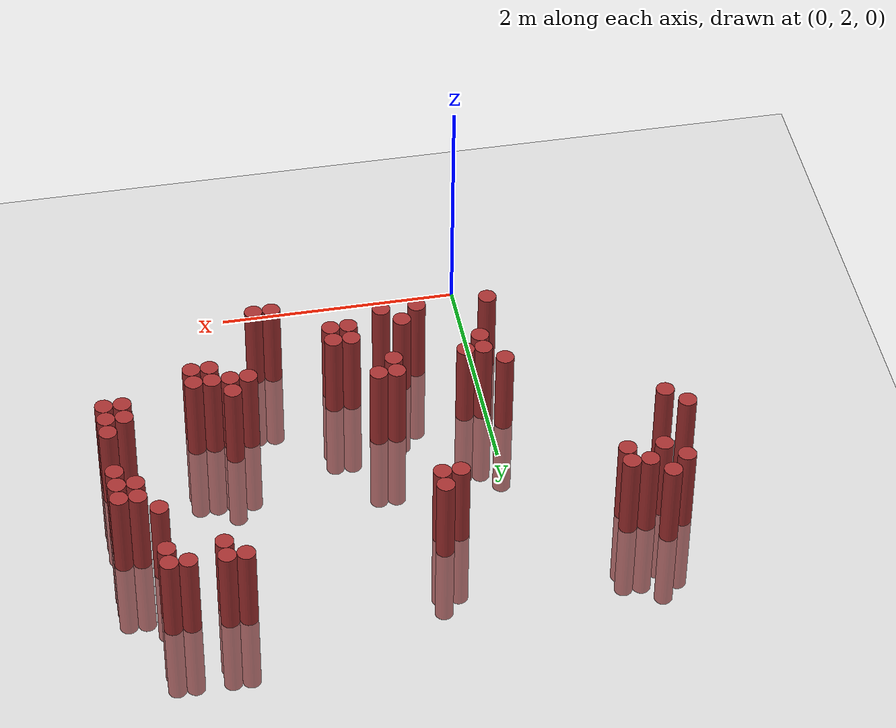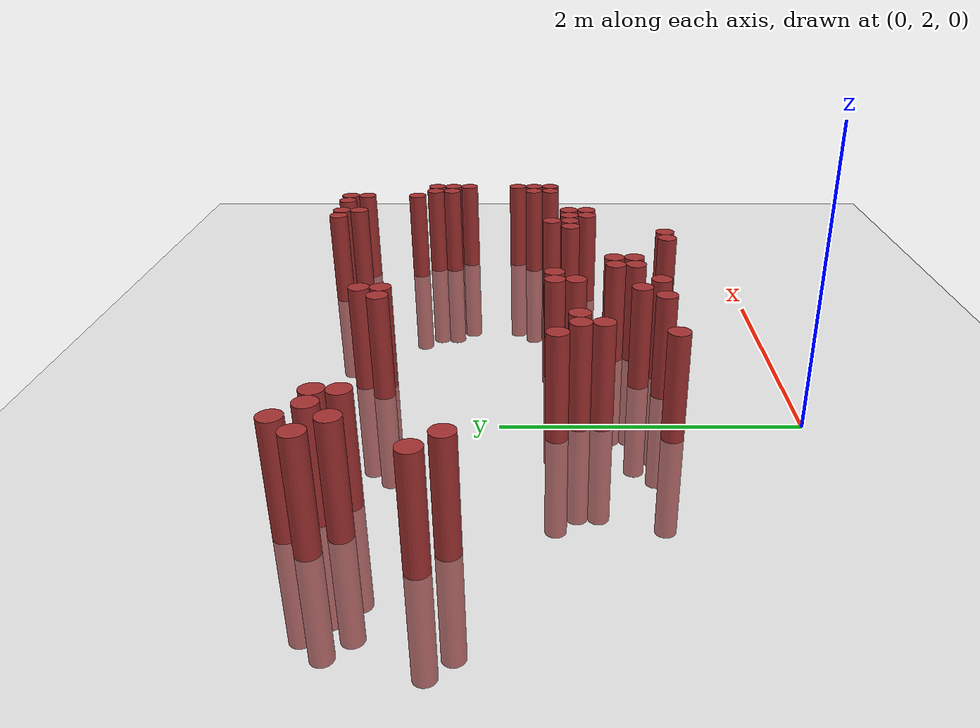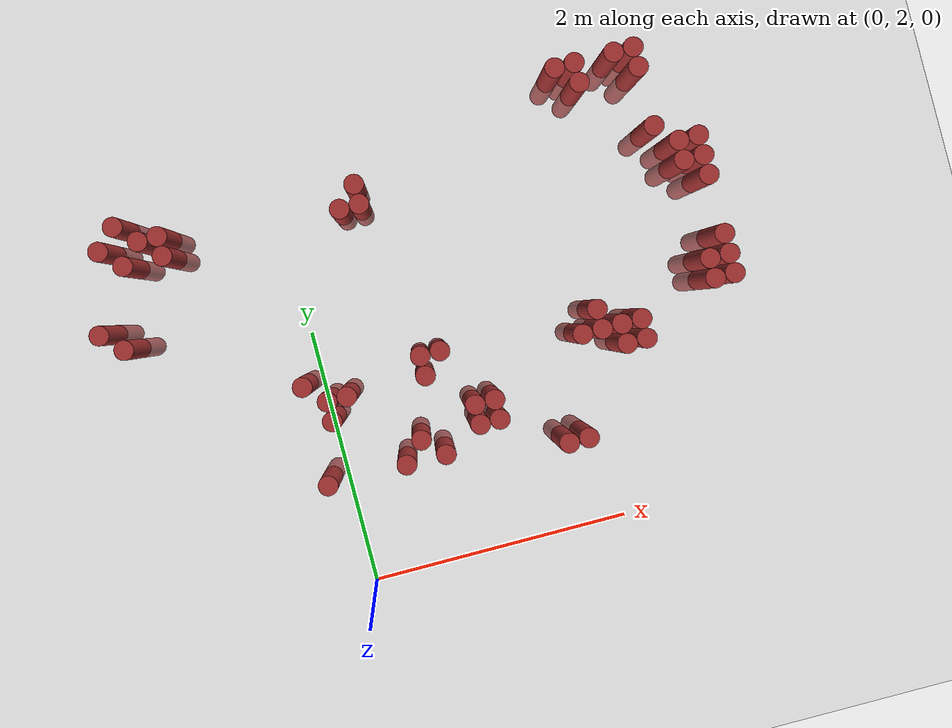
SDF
<sdf version="1.6">
 <world name="default">
  <model name="ground_plane">
   <static>1</static>
   <link name="link">
    <collision name="collision">
     <geometry><plane><normal>0 0 1</normal><size>100 100</size></plane></geometry>
     <surface><friction><ode><mu>100</mu><mu2>50</mu2></ode></friction></surface>
    </collision>
    <visual name="visual">
     <cast_shadows>0</cast_shadows>
     <geometry><plane><normal>0 0 1</normal><size>100 100</size></plane></geometry>
     <material>
      <script><uri>file://media/materials/scripts/gazebo.material</uri><name>Gazebo/Grey</name></script>
     </material>
    </visual>
   </link>
  </model>
  <model name="unit_cylinder_345">
   <static>1</static>
   <pose>-1.475000 4.375000 0.000000 0.000000 0.000000 0.000000</pose>
   <link name="link">
    <inertial>
     <mass>1</mass>
     <inertia><ixx>0.145833</ixx><ixy>0</ixy><ixz>0</ixz><iyy>0.145833</iyy><iyz>0</iyz><izz>0.125</izz></inertia>
    </inertial>
    <collision name="collision">
     <geometry><cylinder><radius>0.075000</radius><length>1.5</length></cylinder></geometry>
    </collision>
    <visual name="visual">
     <geometry><cylinder><radius>0.075000</radius><length>1.5</length></cylinder></geometry>
     <material>
      <ambient>0.648000 0.192000 0.192000 1</ambient>
      <diffuse>0.648000 0.192000 0.192000 1</diffuse>
     </material>
     <material>
      <script><name>Gazebo/Grey</name><uri>file://media/materials/scripts/gazebo.material</uri></script>
     </material>
    </visual>
   </link>
  </model>
  <model name="unit_cylinder_348">
   <static>1</static>
   <pose>-1.325000 4.225000 0.000000 0.000000 0.000000 0.000000</pose>
   <link name="link">
    <inertial>
     <mass>1</mass>
     <inertia><ixx>0.145833</ixx><ixy>0</ixy><ixz>0</ixz><iyy>0.145833</iyy><iyz>0</iyz><izz>0.125</izz></inertia>
    </inertial>
    <collision name="collision">
     <geometry><cylinder><radius>0.075000</radius><length>1.5</length></cylinder></geometry>
    </collision>
    <visual name="visual">
     <geometry><cylinder><radius>0.075000</radius><length>1.5</length></cylinder></geometry>
     <material>
      <ambient>0.648000 0.192000 0.192000 1</ambient>
      <diffuse>0.648000 0.192000 0.192000 1</diffuse>
     </material>
     <material>
      <script><name>Gazebo/Grey</name><uri>file://media/materials/scripts/gazebo.material</uri></script>
     </material>
    </visual>
   </link>
  </model>
  <model name="unit_cylinder_349">
   <static>1</static>
   <pose>-1.325000 4.975000 0.000000 0.000000 0.000000 0.000000</pose>
   <link name="link">
    <inertial>
     <mass>1</mass>
     <inertia><ixx>0.145833</ixx><ixy>0</ixy><ixz>0</ixz><iyy>0.145833</iyy><iyz>0</iyz><izz>0.125</izz></inertia>
    </inertial>
    <collision name="collision">
     <geometry><cylinder><radius>0.075000</radius><length>1.5</length></cylinder></geometry>
    </collision>
    <visual name="visual">
     <geometry><cylinder><radius>0.075000</radius><length>1.5</length></cylinder></geometry>
     <material>
      <ambient>0.648000 0.192000 0.192000 1</ambient>
      <diffuse>0.648000 0.192000 0.192000 1</diffuse>
     </material>
     <material>
      <script><name>Gazebo/Grey</name><uri>file://media/materials/scripts/gazebo.material</uri></script>
     </material>
    </visual>
   </link>
  </model>
  <model name="unit_cylinder_350">
   <static>1</static>
   <pose>-1.175000 4.825000 0.000000 0.000000 0.000000 0.000000</pose>
   <link name="link">
    <inertial>
     <mass>1</mass>
     <inertia><ixx>0.145833</ixx><ixy>0</ixy><ixz>0</ixz><iyy>0.145833</iyy><iyz>0</iyz><izz>0.125</izz></inertia>
    </inertial>
    <collision name="collision">
     <geometry><cylinder><radius>0.075000</radius><length>1.5</length></cylinder></geometry>
    </collision>
    <visual name="visual">
     <geometry><cylinder><radius>0.075000</radius><length>1.5</length></cylinder></geometry>
     <material>
      <ambient>0.648000 0.192000 0.192000 1</ambient>
      <diffuse>0.648000 0.192000 0.192000 1</diffuse>
     </material>
     <material>
      <script><name>Gazebo/Grey</name><uri>file://media/materials/scripts/gazebo.material</uri></script>
     </material>
    </visual>
   </link>
  </model>
  <model name="unit_cylinder_351">
   <static>1</static>
   <pose>-1.175000 5.125000 0.000000 0.000000 0.000000 0.000000</pose>
   <link name="link">
    <inertial>
     <mass>1</mass>
     <inertia><ixx>0.145833</ixx><ixy>0</ixy><ixz>0</ixz><iyy>0.145833</iyy><iyz>0</iyz><izz>0.125</izz></inertia>
    </inertial>
    <collision name="collision">
     <geometry><cylinder><radius>0.075000</radius><length>1.5</length></cylinder></geometry>
    </collision>
    <visual name="visual">
     <geometry><cylinder><radius>0.075000</radius><length>1.5</length></cylinder></geometry>
     <material>
      <ambient>0.648000 0.192000 0.192000 1</ambient>
      <diffuse>0.648000 0.192000 0.192000 1</diffuse>
     </material>
     <material>
      <script><name>Gazebo/Grey</name><uri>file://media/materials/scripts/gazebo.material</uri></script>
     </material>
    </visual>
   </link>
  </model>
  <model name="unit_cylinder_354">
   <static>1</static>
   <pose>-1.025000 4.975000 0.000000 0.000000 0.000000 0.000000</pose>
   <link name="link">
    <inertial>
     <mass>1</mass>
     <inertia><ixx>0.145833</ixx><ixy>0</ixy><ixz>0</ixz><iyy>0.145833</iyy><iyz>0</iyz><izz>0.125</izz></inertia>
    </inertial>
    <collision name="collision">
     <geometry><cylinder><radius>0.075000</radius><length>1.5</length></cylinder></geometry>
    </collision>
    <visual name="visual">
     <geometry><cylinder><radius>0.075000</radius><length>1.5</length></cylinder></geometry>
     <material>
      <ambient>0.648000 0.192000 0.192000 1</ambient>
      <diffuse>0.648000 0.192000 0.192000 1</diffuse>
     </material>
     <material>
      <script><name>Gazebo/Grey</name><uri>file://media/materials/scripts/gazebo.material</uri></script>
     </material>
    </visual>
   </link>
  </model>
  <model name="unit_cylinder_359">
   <static>1</static>
   <pose>-0.875000 4.825000 0.000000 0.000000 0.000000 0.000000</pose>
   <link name="link">
    <inertial>
     <mass>1</mass>
     <inertia><ixx>0.145833</ixx><ixy>0</ixy><ixz>0</ixz><iyy>0.145833</iyy><iyz>0</iyz><izz>0.125</izz></inertia>
    </inertial>
    <collision name="collision">
     <geometry><cylinder><radius>0.075000</radius><length>1.5</length></cylinder></geometry>
    </collision>
    <visual name="visual">
     <geometry><cylinder><radius>0.075000</radius><length>1.5</length></cylinder></geometry>
     <material>
      <ambient>0.648000 0.192000 0.192000 1</ambient>
      <diffuse>0.648000 0.192000 0.192000 1</diffuse>
     </material>
     <material>
      <script><name>Gazebo/Grey</name><uri>file://media/materials/scripts/gazebo.material</uri></script>
     </material>
    </visual>
   </link>
  </model>
  <model name="unit_cylinder_360">
   <static>1</static>
   <pose>-0.875000 4.975000 0.000000 0.000000 0.000000 0.000000</pose>
   <link name="link">
    <inertial>
     <mass>1</mass>
     <inertia><ixx>0.145833</ixx><ixy>0</ixy><ixz>0</ixz><iyy>0.145833</iyy><iyz>0</iyz><izz>0.125</izz></inertia>
    </inertial>
    <collision name="collision">
     <geometry><cylinder><radius>0.075000</radius><length>1.5</length></cylinder></geometry>
    </collision>
    <visual name="visual">
     <geometry><cylinder><radius>0.075000</radius><length>1.5</length></cylinder></geometry>
     <material>
      <ambient>0.648000 0.192000 0.192000 1</ambient>
      <diffuse>0.648000 0.192000 0.192000 1</diffuse>
     </material>
     <material>
      <script><name>Gazebo/Grey</name><uri>file://media/materials/scripts/gazebo.material</uri></script>
     </material>
    </visual>
   </link>
  </model>
  <model name="unit_cylinder_371">
   <static>1</static>
   <pose>-0.125000 2.875000 0.000000 0.000000 0.000000 0.000000</pose>
   <link name="link">
    <inertial>
     <mass>1</mass>
     <inertia><ixx>0.145833</ixx><ixy>0</ixy><ixz>0</ixz><iyy>0.145833</iyy><iyz>0</iyz><izz>0.125</izz></inertia>
    </inertial>
    <collision name="collision">
     <geometry><cylinder><radius>0.075000</radius><length>1.5</length></cylinder></geometry>
    </collision>
    <visual name="visual">
     <geometry><cylinder><radius>0.075000</radius><length>1.5</length></cylinder></geometry>
     <material>
      <ambient>0.648000 0.192000 0.192000 1</ambient>
      <diffuse>0.648000 0.192000 0.192000 1</diffuse>
     </material>
     <material>
      <script><name>Gazebo/Grey</name><uri>file://media/materials/scripts/gazebo.material</uri></script>
     </material>
    </visual>
   </link>
  </model>
  <model name="unit_cylinder_372">
   <static>1</static>
   <pose>-0.125000 3.625000 0.000000 0.000000 0.000000 0.000000</pose>
   <link name="link">
    <inertial>
     <mass>1</mass>
     <inertia><ixx>0.145833</ixx><ixy>0</ixy><ixz>0</ixz><iyy>0.145833</iyy><iyz>0</iyz><izz>0.125</izz></inertia>
    </inertial>
    <collision name="collision">
     <geometry><cylinder><radius>0.075000</radius><length>1.5</length></cylinder></geometry>
    </collision>
    <visual name="visual">
     <geometry><cylinder><radius>0.075000</radius><length>1.5</length></cylinder></geometry>
     <material>
      <ambient>0.648000 0.192000 0.192000 1</ambient>
      <diffuse>0.648000 0.192000 0.192000 1</diffuse>
     </material>
     <material>
      <script><name>Gazebo/Grey</name><uri>file://media/materials/scripts/gazebo.material</uri></script>
     </material>
    </visual>
   </link>
  </model>
  <model name="unit_cylinder_373">
   <static>1</static>
   <pose>0.025000 3.325000 0.000000 0.000000 0.000000 0.000000</pose>
   <link name="link">
    <inertial>
     <mass>1</mass>
     <inertia><ixx>0.145833</ixx><ixy>0</ixy><ixz>0</ixz><iyy>0.145833</iyy><iyz>0</iyz><izz>0.125</izz></inertia>
    </inertial>
    <collision name="collision">
     <geometry><cylinder><radius>0.075000</radius><length>1.5</length></cylinder></geometry>
    </collision>
    <visual name="visual">
     <geometry><cylinder><radius>0.075000</radius><length>1.5</length></cylinder></geometry>
     <material>
      <ambient>0.648000 0.192000 0.192000 1</ambient>
      <diffuse>0.648000 0.192000 0.192000 1</diffuse>
     </material>
     <material>
      <script><name>Gazebo/Grey</name><uri>file://media/materials/scripts/gazebo.material</uri></script>
     </material>
    </visual>
   </link>
  </model>
  <model name="unit_cylinder_374">
   <static>1</static>
   <pose>0.025000 3.475000 0.000000 0.000000 0.000000 0.000000</pose>
   <link name="link">
    <inertial>
     <mass>1</mass>
     <inertia><ixx>0.145833</ixx><ixy>0</ixy><ixz>0</ixz><iyy>0.145833</iyy><iyz>0</iyz><izz>0.125</izz></inertia>
    </inertial>
    <collision name="collision">
     <geometry><cylinder><radius>0.075000</radius><length>1.5</length></cylinder></geometry>
    </collision>
    <visual name="visual">
     <geometry><cylinder><radius>0.075000</radius><length>1.5</length></cylinder></geometry>
     <material>
      <ambient>0.648000 0.192000 0.192000 1</ambient>
      <diffuse>0.648000 0.192000 0.192000 1</diffuse>
     </material>
     <material>
      <script><name>Gazebo/Grey</name><uri>file://media/materials/scripts/gazebo.material</uri></script>
     </material>
    </visual>
   </link>
  </model>
  <model name="unit_cylinder_375">
   <static>1</static>
   <pose>0.175000 3.475000 0.000000 0.000000 0.000000 0.000000</pose>
   <link name="link">
    <inertial>
     <mass>1</mass>
     <inertia><ixx>0.145833</ixx><ixy>0</ixy><ixz>0</ixz><iyy>0.145833</iyy><iyz>0</iyz><izz>0.125</izz></inertia>
    </inertial>
    <collision name="collision">
     <geometry><cylinder><radius>0.075000</radius><length>1.5</length></cylinder></geometry>
    </collision>
    <visual name="visual">
     <geometry><cylinder><radius>0.075000</radius><length>1.5</length></cylinder></geometry>
     <material>
      <ambient>0.648000 0.192000 0.192000 1</ambient>
      <diffuse>0.648000 0.192000 0.192000 1</diffuse>
     </material>
     <material>
      <script><name>Gazebo/Grey</name><uri>file://media/materials/scripts/gazebo.material</uri></script>
     </material>
    </visual>
   </link>
  </model>
  <model name="unit_cylinder_379">
   <static>1</static>
   <pose>0.475000 2.875000 0.000000 0.000000 0.000000 0.000000</pose>
   <link name="link">
    <inertial>
     <mass>1</mass>
     <inertia><ixx>0.145833</ixx><ixy>0</ixy><ixz>0</ixz><iyy>0.145833</iyy><iyz>0</iyz><izz>0.125</izz></inertia>
    </inertial>
    <collision name="collision">
     <geometry><cylinder><radius>0.075000</radius><length>1.5</length></cylinder></geometry>
    </collision>
    <visual name="visual">
     <geometry><cylinder><radius>0.075000</radius><length>1.5</length></cylinder></geometry>
     <material>
      <ambient>0.648000 0.192000 0.192000 1</ambient>
      <diffuse>0.648000 0.192000 0.192000 1</diffuse>
     </material>
     <material>
      <script><name>Gazebo/Grey</name><uri>file://media/materials/scripts/gazebo.material</uri></script>
     </material>
    </visual>
   </link>
  </model>
  <model name="unit_cylinder_380">
   <static>1</static>
   <pose>0.475000 4.825000 0.000000 0.000000 0.000000 0.000000</pose>
   <link name="link">
    <inertial>
     <mass>1</mass>
     <inertia><ixx>0.145833</ixx><ixy>0</ixy><ixz>0</ixz><iyy>0.145833</iyy><iyz>0</iyz><izz>0.125</izz></inertia>
    </inertial>
    <collision name="collision">
     <geometry><cylinder><radius>0.075000</radius><length>1.5</length></cylinder></geometry>
    </collision>
    <visual name="visual">
     <geometry><cylinder><radius>0.075000</radius><length>1.5</length></cylinder></geometry>
     <material>
      <ambient>0.648000 0.192000 0.192000 1</ambient>
      <diffuse>0.648000 0.192000 0.192000 1</diffuse>
     </material>
     <material>
      <script><name>Gazebo/Grey</name><uri>file://media/materials/scripts/gazebo.material</uri></script>
     </material>
    </visual>
   </link>
  </model>
  <model name="unit_cylinder_381">
   <static>1</static>
   <pose>0.625000 3.025000 0.000000 0.000000 0.000000 0.000000</pose>
   <link name="link">
    <inertial>
     <mass>1</mass>
     <inertia><ixx>0.145833</ixx><ixy>0</ixy><ixz>0</ixz><iyy>0.145833</iyy><iyz>0</iyz><izz>0.125</izz></inertia>
    </inertial>
    <collision name="collision">
     <geometry><cylinder><radius>0.075000</radius><length>1.5</length></cylinder></geometry>
    </collision>
    <visual name="visual">
     <geometry><cylinder><radius>0.075000</radius><length>1.5</length></cylinder></geometry>
     <material>
      <ambient>0.648000 0.192000 0.192000 1</ambient>
      <diffuse>0.648000 0.192000 0.192000 1</diffuse>
     </material>
     <material>
      <script><name>Gazebo/Grey</name><uri>file://media/materials/scripts/gazebo.material</uri></script>
     </material>
    </visual>
   </link>
  </model>
  <model name="unit_cylinder_382">
   <static>1</static>
   <pose>0.625000 4.825000 0.000000 0.000000 0.000000 0.000000</pose>
   <link name="link">
    <inertial>
     <mass>1</mass>
     <inertia><ixx>0.145833</ixx><ixy>0</ixy><ixz>0</ixz><iyy>0.145833</iyy><iyz>0</iyz><izz>0.125</izz></inertia>
    </inertial>
    <collision name="collision">
     <geometry><cylinder><radius>0.075000</radius><length>1.5</length></cylinder></geometry>
    </collision>
    <visual name="visual">
     <geometry><cylinder><radius>0.075000</radius><length>1.5</length></cylinder></geometry>
     <material>
      <ambient>0.648000 0.192000 0.192000 1</ambient>
      <diffuse>0.648000 0.192000 0.192000 1</diffuse>
     </material>
     <material>
      <script><name>Gazebo/Grey</name><uri>file://media/materials/scripts/gazebo.material</uri></script>
     </material>
    </visual>
   </link>
  </model>
  <model name="unit_cylinder_383">
   <static>1</static>
   <pose>0.625000 4.975000 0.000000 0.000000 0.000000 0.000000</pose>
   <link name="link">
    <inertial>
     <mass>1</mass>
     <inertia><ixx>0.145833</ixx><ixy>0</ixy><ixz>0</ixz><iyy>0.145833</iyy><iyz>0</iyz><izz>0.125</izz></inertia>
    </inertial>
    <collision name="collision">
     <geometry><cylinder><radius>0.075000</radius><length>1.5</length></cylinder></geometry>
    </collision>
    <visual name="visual">
     <geometry><cylinder><radius>0.075000</radius><length>1.5</length></cylinder></geometry>
     <material>
      <ambient>0.648000 0.192000 0.192000 1</ambient>
      <diffuse>0.648000 0.192000 0.192000 1</diffuse>
     </material>
     <material>
      <script><name>Gazebo/Grey</name><uri>file://media/materials/scripts/gazebo.material</uri></script>
     </material>
    </visual>
   </link>
  </model>
  <model name="unit_cylinder_384">
   <static>1</static>
   <pose>0.775000 2.875000 0.000000 0.000000 0.000000 0.000000</pose>
   <link name="link">
    <inertial>
     <mass>1</mass>
     <inertia><ixx>0.145833</ixx><ixy>0</ixy><ixz>0</ixz><iyy>0.145833</iyy><iyz>0</iyz><izz>0.125</izz></inertia>
    </inertial>
    <collision name="collision">
     <geometry><cylinder><radius>0.075000</radius><length>1.5</length></cylinder></geometry>
    </collision>
    <visual name="visual">
     <geometry><cylinder><radius>0.075000</radius><length>1.5</length></cylinder></geometry>
     <material>
      <ambient>0.648000 0.192000 0.192000 1</ambient>
      <diffuse>0.648000 0.192000 0.192000 1</diffuse>
     </material>
     <material>
      <script><name>Gazebo/Grey</name><uri>file://media/materials/scripts/gazebo.material</uri></script>
     </material>
    </visual>
   </link>
  </model>
  <model name="unit_cylinder_385">
   <static>1</static>
   <pose>0.775000 3.475000 0.000000 0.000000 0.000000 0.000000</pose>
   <link name="link">
    <inertial>
     <mass>1</mass>
     <inertia><ixx>0.145833</ixx><ixy>0</ixy><ixz>0</ixz><iyy>0.145833</iyy><iyz>0</iyz><izz>0.125</izz></inertia>
    </inertial>
    <collision name="collision">
     <geometry><cylinder><radius>0.075000</radius><length>1.5</length></cylinder></geometry>
    </collision>
    <visual name="visual">
     <geometry><cylinder><radius>0.075000</radius><length>1.5</length></cylinder></geometry>
     <material>
      <ambient>0.648000 0.192000 0.192000 1</ambient>
      <diffuse>0.648000 0.192000 0.192000 1</diffuse>
     </material>
     <material>
      <script><name>Gazebo/Grey</name><uri>file://media/materials/scripts/gazebo.material</uri></script>
     </material>
    </visual>
   </link>
  </model>
  <model name="unit_cylinder_386">
   <static>1</static>
   <pose>0.775000 3.625000 0.000000 0.000000 0.000000 0.000000</pose>
   <link name="link">
    <inertial>
     <mass>1</mass>
     <inertia><ixx>0.145833</ixx><ixy>0</ixy><ixz>0</ixz><iyy>0.145833</iyy><iyz>0</iyz><izz>0.125</izz></inertia>
    </inertial>
    <collision name="collision">
     <geometry><cylinder><radius>0.075000</radius><length>1.5</length></cylinder></geometry>
    </collision>
    <visual name="visual">
     <geometry><cylinder><radius>0.075000</radius><length>1.5</length></cylinder></geometry>
     <material>
      <ambient>0.648000 0.192000 0.192000 1</ambient>
      <diffuse>0.648000 0.192000 0.192000 1</diffuse>
     </material>
     <material>
      <script><name>Gazebo/Grey</name><uri>file://media/materials/scripts/gazebo.material</uri></script>
     </material>
    </visual>
   </link>
  </model>
  <model name="unit_cylinder_387">
   <static>1</static>
   <pose>0.925000 3.625000 0.000000 0.000000 0.000000 0.000000</pose>
   <link name="link">
    <inertial>
     <mass>1</mass>
     <inertia><ixx>0.145833</ixx><ixy>0</ixy><ixz>0</ixz><iyy>0.145833</iyy><iyz>0</iyz><izz>0.125</izz></inertia>
    </inertial>
    <collision name="collision">
     <geometry><cylinder><radius>0.075000</radius><length>1.5</length></cylinder></geometry>
    </collision>
    <visual name="visual">
     <geometry><cylinder><radius>0.075000</radius><length>1.5</length></cylinder></geometry>
     <material>
      <ambient>0.648000 0.192000 0.192000 1</ambient>
      <diffuse>0.648000 0.192000 0.192000 1</diffuse>
     </material>
     <material>
      <script><name>Gazebo/Grey</name><uri>file://media/materials/scripts/gazebo.material</uri></script>
     </material>
    </visual>
   </link>
  </model>
  <model name="unit_cylinder_388">
   <static>1</static>
   <pose>1.075000 3.025000 0.000000 0.000000 0.000000 0.000000</pose>
   <link name="link">
    <inertial>
     <mass>1</mass>
     <inertia><ixx>0.145833</ixx><ixy>0</ixy><ixz>0</ixz><iyy>0.145833</iyy><iyz>0</iyz><izz>0.125</izz></inertia>
    </inertial>
    <collision name="collision">
     <geometry><cylinder><radius>0.075000</radius><length>1.5</length></cylinder></geometry>
    </collision>
    <visual name="visual">
     <geometry><cylinder><radius>0.075000</radius><length>1.5</length></cylinder></geometry>
     <material>
      <ambient>0.648000 0.192000 0.192000 1</ambient>
      <diffuse>0.648000 0.192000 0.192000 1</diffuse>
     </material>
     <material>
      <script><name>Gazebo/Grey</name><uri>file://media/materials/scripts/gazebo.material</uri></script>
     </material>
    </visual>
   </link>
  </model>
  <model name="unit_cylinder_389">
   <static>1</static>
   <pose>1.075000 3.175000 0.000000 0.000000 0.000000 0.000000</pose>
   <link name="link">
    <inertial>
     <mass>1</mass>
     <inertia><ixx>0.145833</ixx><ixy>0</ixy><ixz>0</ixz><iyy>0.145833</iyy><iyz>0</iyz><izz>0.125</izz></inertia>
    </inertial>
    <collision name="collision">
     <geometry><cylinder><radius>0.075000</radius><length>1.5</length></cylinder></geometry>
    </collision>
    <visual name="visual">
     <geometry><cylinder><radius>0.075000</radius><length>1.5</length></cylinder></geometry>
     <material>
      <ambient>0.648000 0.192000 0.192000 1</ambient>
      <diffuse>0.648000 0.192000 0.192000 1</diffuse>
     </material>
     <material>
      <script><name>Gazebo/Grey</name><uri>file://media/materials/scripts/gazebo.material</uri></script>
     </material>
    </visual>
   </link>
  </model>
  <model name="unit_cylinder_390">
   <static>1</static>
   <pose>1.225000 3.025000 0.000000 0.000000 0.000000 0.000000</pose>
   <link name="link">
    <inertial>
     <mass>1</mass>
     <inertia><ixx>0.145833</ixx><ixy>0</ixy><ixz>0</ixz><iyy>0.145833</iyy><iyz>0</iyz><izz>0.125</izz></inertia>
    </inertial>
    <collision name="collision">
     <geometry><cylinder><radius>0.075000</radius><length>1.5</length></cylinder></geometry>
    </collision>
    <visual name="visual">
     <geometry><cylinder><radius>0.075000</radius><length>1.5</length></cylinder></geometry>
     <material>
      <ambient>0.648000 0.192000 0.192000 1</ambient>
      <diffuse>0.648000 0.192000 0.192000 1</diffuse>
     </material>
     <material>
      <script><name>Gazebo/Grey</name><uri>file://media/materials/scripts/gazebo.material</uri></script>
     </material>
    </visual>
   </link>
  </model>
  <model name="unit_cylinder_391">
   <static>1</static>
   <pose>1.225000 3.175000 0.000000 0.000000 0.000000 0.000000</pose>
   <link name="link">
    <inertial>
     <mass>1</mass>
     <inertia><ixx>0.145833</ixx><ixy>0</ixy><ixz>0</ixz><iyy>0.145833</iyy><iyz>0</iyz><izz>0.125</izz></inertia>
    </inertial>
    <collision name="collision">
     <geometry><cylinder><radius>0.075000</radius><length>1.5</length></cylinder></geometry>
    </collision>
    <visual name="visual">
     <geometry><cylinder><radius>0.075000</radius><length>1.5</length></cylinder></geometry>
     <material>
      <ambient>0.648000 0.192000 0.192000 1</ambient>
      <diffuse>0.648000 0.192000 0.192000 1</diffuse>
     </material>
     <material>
      <script><name>Gazebo/Grey</name><uri>file://media/materials/scripts/gazebo.material</uri></script>
     </material>
    </visual>
   </link>
  </model>
  <model name="unit_cylinder_393">
   <static>1</static>
   <pose>1.675000 2.725000 0.000000 0.000000 0.000000 0.000000</pose>
   <link name="link">
    <inertial>
     <mass>1</mass>
     <inertia><ixx>0.145833</ixx><ixy>0</ixy><ixz>0</ixz><iyy>0.145833</iyy><iyz>0</iyz><izz>0.125</izz></inertia>
    </inertial>
    <collision name="collision">
     <geometry><cylinder><radius>0.075000</radius><length>1.5</length></cylinder></geometry>
    </collision>
    <visual name="visual">
     <geometry><cylinder><radius>0.075000</radius><length>1.5</length></cylinder></geometry>
     <material>
      <ambient>0.648000 0.192000 0.192000 1</ambient>
      <diffuse>0.648000 0.192000 0.192000 1</diffuse>
     </material>
     <material>
      <script><name>Gazebo/Grey</name><uri>file://media/materials/scripts/gazebo.material</uri></script>
     </material>
    </visual>
   </link>
  </model>
  <model name="unit_cylinder_396">
   <static>1</static>
   <pose>1.825000 2.725000 0.000000 0.000000 0.000000 0.000000</pose>
   <link name="link">
    <inertial>
     <mass>1</mass>
     <inertia><ixx>0.145833</ixx><ixy>0</ixy><ixz>0</ixz><iyy>0.145833</iyy><iyz>0</iyz><izz>0.125</izz></inertia>
    </inertial>
    <collision name="collision">
     <geometry><cylinder><radius>0.075000</radius><length>1.5</length></cylinder></geometry>
    </collision>
    <visual name="visual">
     <geometry><cylinder><radius>0.075000</radius><length>1.5</length></cylinder></geometry>
     <material>
      <ambient>0.648000 0.192000 0.192000 1</ambient>
      <diffuse>0.648000 0.192000 0.192000 1</diffuse>
     </material>
     <material>
      <script><name>Gazebo/Grey</name><uri>file://media/materials/scripts/gazebo.material</uri></script>
     </material>
    </visual>
   </link>
  </model>
  <model name="unit_cylinder_404">
   <static>1</static>
   <pose>1.975000 3.475000 0.000000 0.000000 0.000000 0.000000</pose>
   <link name="link">
    <inertial>
     <mass>1</mass>
     <inertia><ixx>0.145833</ixx><ixy>0</ixy><ixz>0</ixz><iyy>0.145833</iyy><iyz>0</iyz><izz>0.125</izz></inertia>
    </inertial>
    <collision name="collision">
     <geometry><cylinder><radius>0.075000</radius><length>1.5</length></cylinder></geometry>
    </collision>
    <visual name="visual">
     <geometry><cylinder><radius>0.075000</radius><length>1.5</length></cylinder></geometry>
     <material>
      <ambient>0.648000 0.192000 0.192000 1</ambient>
      <diffuse>0.648000 0.192000 0.192000 1</diffuse>
     </material>
     <material>
      <script><name>Gazebo/Grey</name><uri>file://media/materials/scripts/gazebo.material</uri></script>
     </material>
    </visual>
   </link>
  </model>
  <model name="unit_cylinder_407">
   <static>1</static>
   <pose>2.125000 3.475000 0.000000 0.000000 0.000000 0.000000</pose>
   <link name="link">
    <inertial>
     <mass>1</mass>
     <inertia><ixx>0.145833</ixx><ixy>0</ixy><ixz>0</ixz><iyy>0.145833</iyy><iyz>0</iyz><izz>0.125</izz></inertia>
    </inertial>
    <collision name="collision">
     <geometry><cylinder><radius>0.075000</radius><length>1.5</length></cylinder></geometry>
    </collision>
    <visual name="visual">
     <geometry><cylinder><radius>0.075000</radius><length>1.5</length></cylinder></geometry>
     <material>
      <ambient>0.648000 0.192000 0.192000 1</ambient>
      <diffuse>0.648000 0.192000 0.192000 1</diffuse>
     </material>
     <material>
      <script><name>Gazebo/Grey</name><uri>file://media/materials/scripts/gazebo.material</uri></script>
     </material>
    </visual>
   </link>
  </model>
  <model name="unit_cylinder_408">
   <static>1</static>
   <pose>2.125000 3.625000 0.000000 0.000000 0.000000 0.000000</pose>
   <link name="link">
    <inertial>
     <mass>1</mass>
     <inertia><ixx>0.145833</ixx><ixy>0</ixy><ixz>0</ixz><iyy>0.145833</iyy><iyz>0</iyz><izz>0.125</izz></inertia>
    </inertial>
    <collision name="collision">
     <geometry><cylinder><radius>0.075000</radius><length>1.5</length></cylinder></geometry>
    </collision>
    <visual name="visual">
     <geometry><cylinder><radius>0.075000</radius><length>1.5</length></cylinder></geometry>
     <material>
      <ambient>0.648000 0.192000 0.192000 1</ambient>
      <diffuse>0.648000 0.192000 0.192000 1</diffuse>
     </material>
     <material>
      <script><name>Gazebo/Grey</name><uri>file://media/materials/scripts/gazebo.material</uri></script>
     </material>
    </visual>
   </link>
  </model>
  <model name="unit_cylinder_409">
   <static>1</static>
   <pose>2.275000 3.325000 0.000000 0.000000 0.000000 0.000000</pose>
   <link name="link">
    <inertial>
     <mass>1</mass>
     <inertia><ixx>0.145833</ixx><ixy>0</ixy><ixz>0</ixz><iyy>0.145833</iyy><iyz>0</iyz><izz>0.125</izz></inertia>
    </inertial>
    <collision name="collision">
     <geometry><cylinder><radius>0.075000</radius><length>1.5</length></cylinder></geometry>
    </collision>
    <visual name="visual">
     <geometry><cylinder><radius>0.075000</radius><length>1.5</length></cylinder></geometry>
     <material>
      <ambient>0.648000 0.192000 0.192000 1</ambient>
      <diffuse>0.648000 0.192000 0.192000 1</diffuse>
     </material>
     <material>
      <script><name>Gazebo/Grey</name><uri>file://media/materials/scripts/gazebo.material</uri></script>
     </material>
    </visual>
   </link>
  </model>
  <model name="unit_cylinder_410">
   <static>1</static>
   <pose>2.275000 3.475000 0.000000 0.000000 0.000000 0.000000</pose>
   <link name="link">
    <inertial>
     <mass>1</mass>
     <inertia><ixx>0.145833</ixx><ixy>0</ixy><ixz>0</ixz><iyy>0.145833</iyy><iyz>0</iyz><izz>0.125</izz></inertia>
    </inertial>
    <collision name="collision">
     <geometry><cylinder><radius>0.075000</radius><length>1.5</length></cylinder></geometry>
    </collision>
    <visual name="visual">
     <geometry><cylinder><radius>0.075000</radius><length>1.5</length></cylinder></geometry>
     <material>
      <ambient>0.648000 0.192000 0.192000 1</ambient>
      <diffuse>0.648000 0.192000 0.192000 1</diffuse>
     </material>
     <material>
      <script><name>Gazebo/Grey</name><uri>file://media/materials/scripts/gazebo.material</uri></script>
     </material>
    </visual>
   </link>
  </model>
  <model name="unit_cylinder_411">
   <static>1</static>
   <pose>2.275000 5.425000 0.000000 0.000000 0.000000 0.000000</pose>
   <link name="link">
    <inertial>
     <mass>1</mass>
     <inertia><ixx>0.145833</ixx><ixy>0</ixy><ixz>0</ixz><iyy>0.145833</iyy><iyz>0</iyz><izz>0.125</izz></inertia>
    </inertial>
    <collision name="collision">
     <geometry><cylinder><radius>0.075000</radius><length>1.5</length></cylinder></geometry>
    </collision>
    <visual name="visual">
     <geometry><cylinder><radius>0.075000</radius><length>1.5</length></cylinder></geometry>
     <material>
      <ambient>0.648000 0.192000 0.192000 1</ambient>
      <diffuse>0.648000 0.192000 0.192000 1</diffuse>
     </material>
     <material>
      <script><name>Gazebo/Grey</name><uri>file://media/materials/scripts/gazebo.material</uri></script>
     </material>
    </visual>
   </link>
  </model>
  <model name="unit_cylinder_412">
   <static>1</static>
   <pose>2.425000 3.325000 0.000000 0.000000 0.000000 0.000000</pose>
   <link name="link">
    <inertial>
     <mass>1</mass>
     <inertia><ixx>0.145833</ixx><ixy>0</ixy><ixz>0</ixz><iyy>0.145833</iyy><iyz>0</iyz><izz>0.125</izz></inertia>
    </inertial>
    <collision name="collision">
     <geometry><cylinder><radius>0.075000</radius><length>1.5</length></cylinder></geometry>
    </collision>
    <visual name="visual">
     <geometry><cylinder><radius>0.075000</radius><length>1.5</length></cylinder></geometry>
     <material>
      <ambient>0.648000 0.192000 0.192000 1</ambient>
      <diffuse>0.648000 0.192000 0.192000 1</diffuse>
     </material>
     <material>
      <script><name>Gazebo/Grey</name><uri>file://media/materials/scripts/gazebo.material</uri></script>
     </material>
    </visual>
   </link>
  </model>
  <model name="unit_cylinder_413">
   <static>1</static>
   <pose>2.425000 3.475000 0.000000 0.000000 0.000000 0.000000</pose>
   <link name="link">
    <inertial>
     <mass>1</mass>
     <inertia><ixx>0.145833</ixx><ixy>0</ixy><ixz>0</ixz><iyy>0.145833</iyy><iyz>0</iyz><izz>0.125</izz></inertia>
    </inertial>
    <collision name="collision">
     <geometry><cylinder><radius>0.075000</radius><length>1.5</length></cylinder></geometry>
    </collision>
    <visual name="visual">
     <geometry><cylinder><radius>0.075000</radius><length>1.5</length></cylinder></geometry>
     <material>
      <ambient>0.648000 0.192000 0.192000 1</ambient>
      <diffuse>0.648000 0.192000 0.192000 1</diffuse>
     </material>
     <material>
      <script><name>Gazebo/Grey</name><uri>file://media/materials/scripts/gazebo.material</uri></script>
     </material>
    </visual>
   </link>
  </model>
  <model name="unit_cylinder_414">
   <static>1</static>
   <pose>2.425000 5.275000 0.000000 0.000000 0.000000 0.000000</pose>
   <link name="link">
    <inertial>
     <mass>1</mass>
     <inertia><ixx>0.145833</ixx><ixy>0</ixy><ixz>0</ixz><iyy>0.145833</iyy><iyz>0</iyz><izz>0.125</izz></inertia>
    </inertial>
    <collision name="collision">
     <geometry><cylinder><radius>0.075000</radius><length>1.5</length></cylinder></geometry>
    </collision>
    <visual name="visual">
     <geometry><cylinder><radius>0.075000</radius><length>1.5</length></cylinder></geometry>
     <material>
      <ambient>0.648000 0.192000 0.192000 1</ambient>
      <diffuse>0.648000 0.192000 0.192000 1</diffuse>
     </material>
     <material>
      <script><name>Gazebo/Grey</name><uri>file://media/materials/scripts/gazebo.material</uri></script>
     </material>
    </visual>
   </link>
  </model>
  <model name="unit_cylinder_415">
   <static>1</static>
   <pose>2.425000 5.425000 0.000000 0.000000 0.000000 0.000000</pose>
   <link name="link">
    <inertial>
     <mass>1</mass>
     <inertia><ixx>0.145833</ixx><ixy>0</ixy><ixz>0</ixz><iyy>0.145833</iyy><iyz>0</iyz><izz>0.125</izz></inertia>
    </inertial>
    <collision name="collision">
     <geometry><cylinder><radius>0.075000</radius><length>1.5</length></cylinder></geometry>
    </collision>
    <visual name="visual">
     <geometry><cylinder><radius>0.075000</radius><length>1.5</length></cylinder></geometry>
     <material>
      <ambient>0.648000 0.192000 0.192000 1</ambient>
      <diffuse>0.648000 0.192000 0.192000 1</diffuse>
     </material>
     <material>
      <script><name>Gazebo/Grey</name><uri>file://media/materials/scripts/gazebo.material</uri></script>
     </material>
    </visual>
   </link>
  </model>
  <model name="unit_cylinder_416">
   <static>1</static>
   <pose>2.725000 5.425000 0.000000 0.000000 0.000000 0.000000</pose>
   <link name="link">
    <inertial>
     <mass>1</mass>
     <inertia><ixx>0.145833</ixx><ixy>0</ixy><ixz>0</ixz><iyy>0.145833</iyy><iyz>0</iyz><izz>0.125</izz></inertia>
    </inertial>
    <collision name="collision">
     <geometry><cylinder><radius>0.075000</radius><length>1.5</length></cylinder></geometry>
    </collision>
    <visual name="visual">
     <geometry><cylinder><radius>0.075000</radius><length>1.5</length></cylinder></geometry>
     <material>
      <ambient>0.648000 0.192000 0.192000 1</ambient>
      <diffuse>0.648000 0.192000 0.192000 1</diffuse>
     </material>
     <material>
      <script><name>Gazebo/Grey</name><uri>file://media/materials/scripts/gazebo.material</uri></script>
     </material>
    </visual>
   </link>
  </model>
  <model name="unit_cylinder_417">
   <static>1</static>
   <pose>2.875000 4.825000 0.000000 0.000000 0.000000 0.000000</pose>
   <link name="link">
    <inertial>
     <mass>1</mass>
     <inertia><ixx>0.145833</ixx><ixy>0</ixy><ixz>0</ixz><iyy>0.145833</iyy><iyz>0</iyz><izz>0.125</izz></inertia>
    </inertial>
    <collision name="collision">
     <geometry><cylinder><radius>0.075000</radius><length>1.5</length></cylinder></geometry>
    </collision>
    <visual name="visual">
     <geometry><cylinder><radius>0.075000</radius><length>1.5</length></cylinder></geometry>
     <material>
      <ambient>0.648000 0.192000 0.192000 1</ambient>
      <diffuse>0.648000 0.192000 0.192000 1</diffuse>
     </material>
     <material>
      <script><name>Gazebo/Grey</name><uri>file://media/materials/scripts/gazebo.material</uri></script>
     </material>
    </visual>
   </link>
  </model>
  <model name="unit_cylinder_418">
   <static>1</static>
   <pose>2.875000 5.275000 0.000000 0.000000 0.000000 0.000000</pose>
   <link name="link">
    <inertial>
     <mass>1</mass>
     <inertia><ixx>0.145833</ixx><ixy>0</ixy><ixz>0</ixz><iyy>0.145833</iyy><iyz>0</iyz><izz>0.125</izz></inertia>
    </inertial>
    <collision name="collision">
     <geometry><cylinder><radius>0.075000</radius><length>1.5</length></cylinder></geometry>
    </collision>
    <visual name="visual">
     <geometry><cylinder><radius>0.075000</radius><length>1.5</length></cylinder></geometry>
     <material>
      <ambient>0.648000 0.192000 0.192000 1</ambient>
      <diffuse>0.648000 0.192000 0.192000 1</diffuse>
     </material>
     <material>
      <script><name>Gazebo/Grey</name><uri>file://media/materials/scripts/gazebo.material</uri></script>
     </material>
    </visual>
   </link>
  </model>
  <model name="unit_cylinder_419">
   <static>1</static>
   <pose>2.875000 5.425000 0.000000 0.000000 0.000000 0.000000</pose>
   <link name="link">
    <inertial>
     <mass>1</mass>
     <inertia><ixx>0.145833</ixx><ixy>0</ixy><ixz>0</ixz><iyy>0.145833</iyy><iyz>0</iyz><izz>0.125</izz></inertia>
    </inertial>
    <collision name="collision">
     <geometry><cylinder><radius>0.075000</radius><length>1.5</length></cylinder></geometry>
    </collision>
    <visual name="visual">
     <geometry><cylinder><radius>0.075000</radius><length>1.5</length></cylinder></geometry>
     <material>
      <ambient>0.648000 0.192000 0.192000 1</ambient>
      <diffuse>0.648000 0.192000 0.192000 1</diffuse>
     </material>
     <material>
      <script><name>Gazebo/Grey</name><uri>file://media/materials/scripts/gazebo.material</uri></script>
     </material>
    </visual>
   </link>
  </model>
  <model name="unit_cylinder_423">
   <static>1</static>
   <pose>3.025000 3.625000 0.000000 0.000000 0.000000 0.000000</pose>
   <link name="link">
    <inertial>
     <mass>1</mass>
     <inertia><ixx>0.145833</ixx><ixy>0</ixy><ixz>0</ixz><iyy>0.145833</iyy><iyz>0</iyz><izz>0.125</izz></inertia>
    </inertial>
    <collision name="collision">
     <geometry><cylinder><radius>0.075000</radius><length>1.5</length></cylinder></geometry>
    </collision>
    <visual name="visual">
     <geometry><cylinder><radius>0.075000</radius><length>1.5</length></cylinder></geometry>
     <material>
      <ambient>0.648000 0.192000 0.192000 1</ambient>
      <diffuse>0.648000 0.192000 0.192000 1</diffuse>
     </material>
     <material>
      <script><name>Gazebo/Grey</name><uri>file://media/materials/scripts/gazebo.material</uri></script>
     </material>
    </visual>
   </link>
  </model>
  <model name="unit_cylinder_424">
   <static>1</static>
   <pose>3.025000 3.775000 0.000000 0.000000 0.000000 0.000000</pose>
   <link name="link">
    <inertial>
     <mass>1</mass>
     <inertia><ixx>0.145833</ixx><ixy>0</ixy><ixz>0</ixz><iyy>0.145833</iyy><iyz>0</iyz><izz>0.125</izz></inertia>
    </inertial>
    <collision name="collision">
     <geometry><cylinder><radius>0.075000</radius><length>1.5</length></cylinder></geometry>
    </collision>
    <visual name="visual">
     <geometry><cylinder><radius>0.075000</radius><length>1.5</length></cylinder></geometry>
     <material>
      <ambient>0.648000 0.192000 0.192000 1</ambient>
      <diffuse>0.648000 0.192000 0.192000 1</diffuse>
     </material>
     <material>
      <script><name>Gazebo/Grey</name><uri>file://media/materials/scripts/gazebo.material</uri></script>
     </material>
    </visual>
   </link>
  </model>
  <model name="unit_cylinder_425">
   <static>1</static>
   <pose>3.025000 4.525000 0.000000 0.000000 0.000000 0.000000</pose>
   <link name="link">
    <inertial>
     <mass>1</mass>
     <inertia><ixx>0.145833</ixx><ixy>0</ixy><ixz>0</ixz><iyy>0.145833</iyy><iyz>0</iyz><izz>0.125</izz></inertia>
    </inertial>
    <collision name="collision">
     <geometry><cylinder><radius>0.075000</radius><length>1.5</length></cylinder></geometry>
    </collision>
    <visual name="visual">
     <geometry><cylinder><radius>0.075000</radius><length>1.5</length></cylinder></geometry>
     <material>
      <ambient>0.648000 0.192000 0.192000 1</ambient>
      <diffuse>0.648000 0.192000 0.192000 1</diffuse>
     </material>
     <material>
      <script><name>Gazebo/Grey</name><uri>file://media/materials/scripts/gazebo.material</uri></script>
     </material>
    </visual>
   </link>
  </model>
  <model name="unit_cylinder_426">
   <static>1</static>
   <pose>3.025000 4.675000 0.000000 0.000000 0.000000 0.000000</pose>
   <link name="link">
    <inertial>
     <mass>1</mass>
     <inertia><ixx>0.145833</ixx><ixy>0</ixy><ixz>0</ixz><iyy>0.145833</iyy><iyz>0</iyz><izz>0.125</izz></inertia>
    </inertial>
    <collision name="collision">
     <geometry><cylinder><radius>0.075000</radius><length>1.5</length></cylinder></geometry>
    </collision>
    <visual name="visual">
     <geometry><cylinder><radius>0.075000</radius><length>1.5</length></cylinder></geometry>
     <material>
      <ambient>0.648000 0.192000 0.192000 1</ambient>
      <diffuse>0.648000 0.192000 0.192000 1</diffuse>
     </material>
     <material>
      <script><name>Gazebo/Grey</name><uri>file://media/materials/scripts/gazebo.material</uri></script>
     </material>
    </visual>
   </link>
  </model>
  <model name="unit_cylinder_432">
   <static>1</static>
   <pose>3.175000 3.625000 0.000000 0.000000 0.000000 0.000000</pose>
   <link name="link">
    <inertial>
     <mass>1</mass>
     <inertia><ixx>0.145833</ixx><ixy>0</ixy><ixz>0</ixz><iyy>0.145833</iyy><iyz>0</iyz><izz>0.125</izz></inertia>
    </inertial>
    <collision name="collision">
     <geometry><cylinder><radius>0.075000</radius><length>1.5</length></cylinder></geometry>
    </collision>
    <visual name="visual">
     <geometry><cylinder><radius>0.075000</radius><length>1.5</length></cylinder></geometry>
     <material>
      <ambient>0.648000 0.192000 0.192000 1</ambient>
      <diffuse>0.648000 0.192000 0.192000 1</diffuse>
     </material>
     <material>
      <script><name>Gazebo/Grey</name><uri>file://media/materials/scripts/gazebo.material</uri></script>
     </material>
    </visual>
   </link>
  </model>
  <model name="unit_cylinder_433">
   <static>1</static>
   <pose>3.175000 3.775000 0.000000 0.000000 0.000000 0.000000</pose>
   <link name="link">
    <inertial>
     <mass>1</mass>
     <inertia><ixx>0.145833</ixx><ixy>0</ixy><ixz>0</ixz><iyy>0.145833</iyy><iyz>0</iyz><izz>0.125</izz></inertia>
    </inertial>
    <collision name="collision">
     <geometry><cylinder><radius>0.075000</radius><length>1.5</length></cylinder></geometry>
    </collision>
    <visual name="visual">
     <geometry><cylinder><radius>0.075000</radius><length>1.5</length></cylinder></geometry>
     <material>
      <ambient>0.648000 0.192000 0.192000 1</ambient>
      <diffuse>0.648000 0.192000 0.192000 1</diffuse>
     </material>
     <material>
      <script><name>Gazebo/Grey</name><uri>file://media/materials/scripts/gazebo.material</uri></script>
     </material>
    </visual>
   </link>
  </model>
  <model name="unit_cylinder_434">
   <static>1</static>
   <pose>3.175000 3.925000 0.000000 0.000000 0.000000 0.000000</pose>
   <link name="link">
    <inertial>
     <mass>1</mass>
     <inertia><ixx>0.145833</ixx><ixy>0</ixy><ixz>0</ixz><iyy>0.145833</iyy><iyz>0</iyz><izz>0.125</izz></inertia>
    </inertial>
    <collision name="collision">
     <geometry><cylinder><radius>0.075000</radius><length>1.5</length></cylinder></geometry>
    </collision>
    <visual name="visual">
     <geometry><cylinder><radius>0.075000</radius><length>1.5</length></cylinder></geometry>
     <material>
      <ambient>0.648000 0.192000 0.192000 1</ambient>
      <diffuse>0.648000 0.192000 0.192000 1</diffuse>
     </material>
     <material>
      <script><name>Gazebo/Grey</name><uri>file://media/materials/scripts/gazebo.material</uri></script>
     </material>
    </visual>
   </link>
  </model>
  <model name="unit_cylinder_435">
   <static>1</static>
   <pose>3.175000 4.375000 0.000000 0.000000 0.000000 0.000000</pose>
   <link name="link">
    <inertial>
     <mass>1</mass>
     <inertia><ixx>0.145833</ixx><ixy>0</ixy><ixz>0</ixz><iyy>0.145833</iyy><iyz>0</iyz><izz>0.125</izz></inertia>
    </inertial>
    <collision name="collision">
     <geometry><cylinder><radius>0.075000</radius><length>1.5</length></cylinder></geometry>
    </collision>
    <visual name="visual">
     <geometry><cylinder><radius>0.075000</radius><length>1.5</length></cylinder></geometry>
     <material>
      <ambient>0.648000 0.192000 0.192000 1</ambient>
      <diffuse>0.648000 0.192000 0.192000 1</diffuse>
     </material>
     <material>
      <script><name>Gazebo/Grey</name><uri>file://media/materials/scripts/gazebo.material</uri></script>
     </material>
    </visual>
   </link>
  </model>
  <model name="unit_cylinder_436">
   <static>1</static>
   <pose>3.175000 4.525000 0.000000 0.000000 0.000000 0.000000</pose>
   <link name="link">
    <inertial>
     <mass>1</mass>
     <inertia><ixx>0.145833</ixx><ixy>0</ixy><ixz>0</ixz><iyy>0.145833</iyy><iyz>0</iyz><izz>0.125</izz></inertia>
    </inertial>
    <collision name="collision">
     <geometry><cylinder><radius>0.075000</radius><length>1.5</length></cylinder></geometry>
    </collision>
    <visual name="visual">
     <geometry><cylinder><radius>0.075000</radius><length>1.5</length></cylinder></geometry>
     <material>
      <ambient>0.648000 0.192000 0.192000 1</ambient>
      <diffuse>0.648000 0.192000 0.192000 1</diffuse>
     </material>
     <material>
      <script><name>Gazebo/Grey</name><uri>file://media/materials/scripts/gazebo.material</uri></script>
     </material>
    </visual>
   </link>
  </model>
  <model name="unit_cylinder_437">
   <static>1</static>
   <pose>3.175000 4.675000 0.000000 0.000000 0.000000 0.000000</pose>
   <link name="link">
    <inertial>
     <mass>1</mass>
     <inertia><ixx>0.145833</ixx><ixy>0</ixy><ixz>0</ixz><iyy>0.145833</iyy><iyz>0</iyz><izz>0.125</izz></inertia>
    </inertial>
    <collision name="collision">
     <geometry><cylinder><radius>0.075000</radius><length>1.5</length></cylinder></geometry>
    </collision>
    <visual name="visual">
     <geometry><cylinder><radius>0.075000</radius><length>1.5</length></cylinder></geometry>
     <material>
      <ambient>0.648000 0.192000 0.192000 1</ambient>
      <diffuse>0.648000 0.192000 0.192000 1</diffuse>
     </material>
     <material>
      <script><name>Gazebo/Grey</name><uri>file://media/materials/scripts/gazebo.material</uri></script>
     </material>
    </visual>
   </link>
  </model>
 </world>
</sdf>
